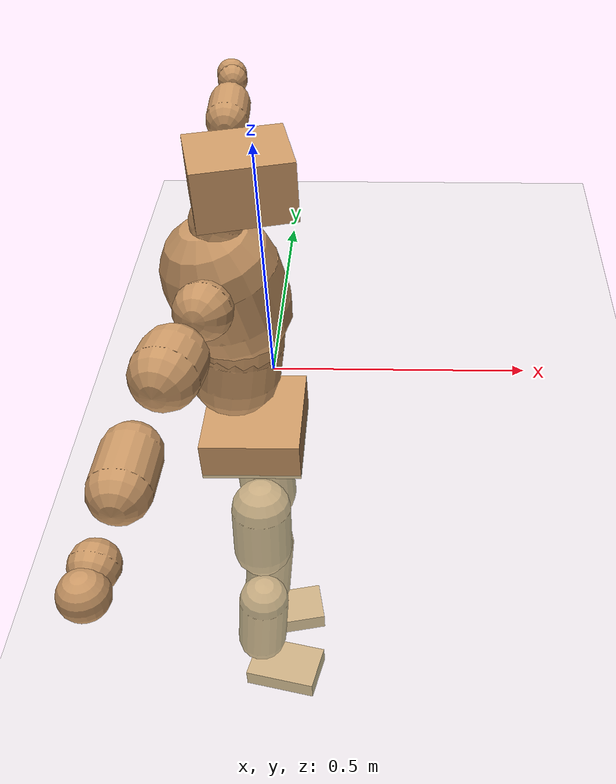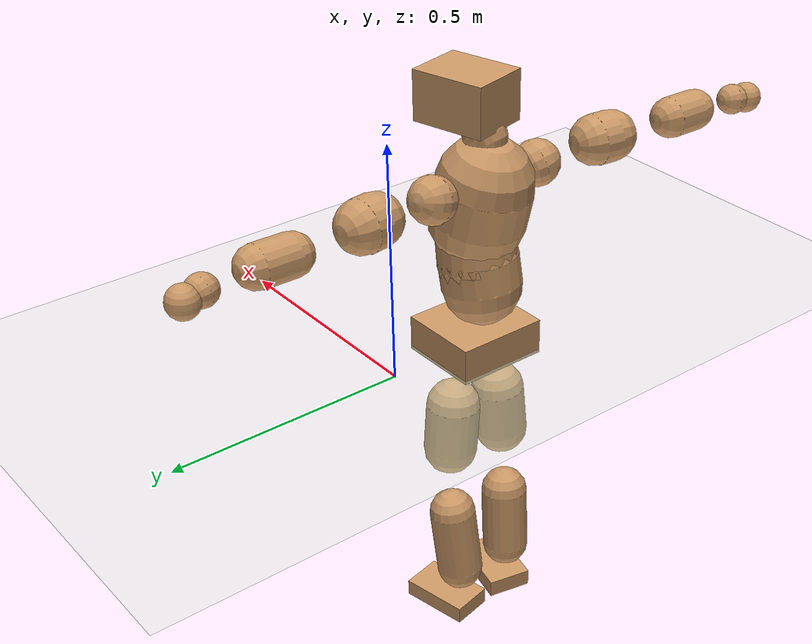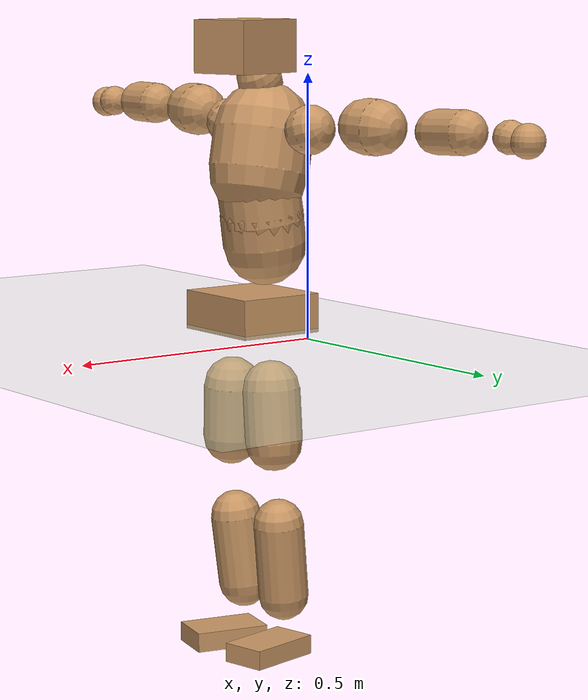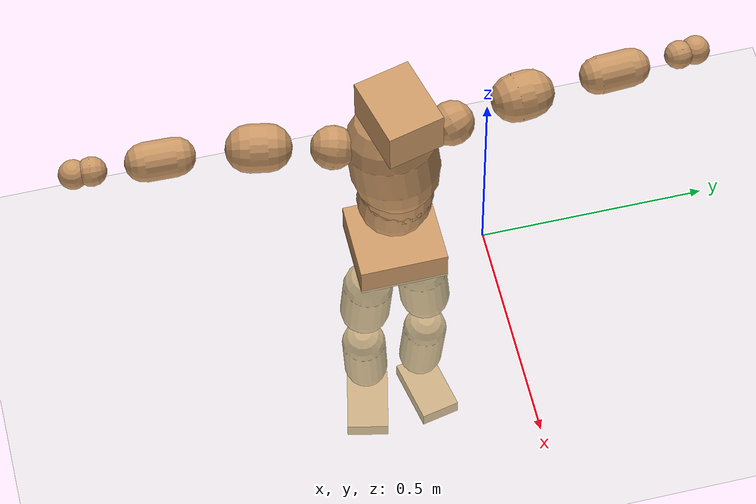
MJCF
<mujoco model="humanoid">
  <compiler coordinate="local" angle="radian"/>
  <default>
    <joint damping="0.0" armature="0.01" stiffness="0.0" limited="true"/>
    <geom conaffinity="1" condim="3" contype="7" margin="0.001" rgba="0.8 0.6 .4 1"/>
  </default>
  <asset>
    <texture type="skybox" builtin="gradient" rgb1=".4 .5 .6" rgb2="0 0 0" width="100" height="100"/>
    <texture builtin="flat" height="1278" mark="cross" markrgb="1 1 1" name="texgeom" random="0.01" rgb1="0.8 0.6 0.4" rgb2="0.8 0.6 0.4" type="cube" width="127"/>
    <texture builtin="checker" height="100" name="texplane" rgb1="0 0 0" rgb2="0.8 0.8 0.8" type="2d" width="100"/>
    <material name="MatPlane" reflectance="0.5" shininess="1" specular="1" texrepeat="60 60" texture="texplane"/>
    <material name="geom" texture="texgeom" texuniform="true"/>
  </asset>
  <worldbody>
    <light cutoff="100" diffuse="1 1 1" dir="-0 0 -1.3" directional="true" exponent="1" pos="0 0 1.3" specular=".1 .1 .1"/>
    <geom conaffinity="1" condim="3" name="floor" pos="0 0 0" rgba="0.8 0.9 0.8 1" size="100 100 .2" type="plane" material="MatPlane"/>
    <body name="Pelvis" pos="-0.0036 -0.1957 0.0359">
      <freejoint name="Pelvis"/>
      <geom type="box" contype="1" conaffinity="1" density="5359.375105" pos="-0.0083 -0.0000 -0.0069" size="0.0888 0.0973 0.0382" quat="1.0000 0.0000 0.0000 0.0025" name="Pelvis"/>
      <body name="L_Hip" pos="-0.01 0.053 -0.068">
        <joint name="L_Hip_x" type="hinge" pos="0 0 0" axis="1 0 0" stiffness="1600" damping="160" armature="0.02" range="-180.0000 180.0000"/>
        <joint name="L_Hip_y" type="hinge" pos="0 0 0" axis="0 1 0" stiffness="1600" damping="160" armature="0.02" range="-180.0000 180.0000"/>
        <joint name="L_Hip_z" type="hinge" pos="0 0 0" axis="0 0 1" stiffness="1600" damping="160" armature="0.02" range="-180.0000 180.0000"/>
        <geom type="capsule" contype="1" conaffinity="1" density="2040.816327" size="0.0563" fromto="0.0000 0.0069 -0.0861 0.0001 0.0154 -0.1911" name="L_Hip"/>
        <body name="L_Knee" pos="0.0001 0.0224 -0.2771">
          <joint name="L_Knee_x" type="hinge" pos="0 0 0" axis="1 0 0" stiffness="1600" damping="160" armature="0.02" range="-180.0000 180.0000"/>
          <joint name="L_Knee_y" type="hinge" pos="0 0 0" axis="0 1 0" stiffness="1600" damping="160" armature="0.02" range="-180.0000 180.0000"/>
          <joint name="L_Knee_z" type="hinge" pos="0 0 0" axis="0 0 1" stiffness="1600" damping="160" armature="0.02" range="-180.0000 180.0000"/>
          <geom type="capsule" contype="1" conaffinity="1" density="1234.567901" size="0.0499" fromto="-0.0090 -0.0037 -0.0793 -0.0258 -0.0106 -0.2268" name="L_Knee"/>
          <body name="L_Ankle" pos="-0.0348 -0.0143 -0.3061">
            <joint name="L_Ankle_x" type="hinge" pos="0 0 0" axis="1 0 0" stiffness="1600" damping="160" armature="0.02" range="-180.0000 180.0000"/>
            <joint name="L_Ankle_y" type="hinge" pos="0 0 0" axis="0 1 0" stiffness="1600" damping="160" armature="0.02" range="-180.0000 180.0000"/>
            <joint name="L_Ankle_z" type="hinge" pos="0 0 0" axis="0 0 1" stiffness="1600" damping="160" armature="0.02" range="-180.0000 180.0000"/>
            <geom type="box" contype="1" conaffinity="1" density="999.999907" pos="0.0508 0.0104 -0.0218" size="0.076 0.0449 0.019" quat="0.9949 0.0000 0.0000 0.1010" name="L_Ankle"/>
            <body name="L_Toe" pos="0.1017 0.0209 -0.0437">
              <joint name="L_Toe_x" type="hinge" pos="0 0 0" axis="1 0 0" stiffness="1000" damping="100" armature="0.02" range="-180.0000 180.0000"/>
              <joint name="L_Toe_y" type="hinge" pos="0 0 0" axis="0 1 0" stiffness="1000" damping="100" armature="0.02" range="-180.0000 180.0000"/>
              <joint name="L_Toe_z" type="hinge" pos="0 0 0" axis="0 0 1" stiffness="1000" damping="100" armature="0.02" range="-180.0000 180.0000"/>
              <geom type="box" contype="1" conaffinity="1" density="8104172.301193" pos="0.0000 0.0000 0.0222" size="0.001 0.0023 0.001" quat="0.9941 0.0000 0.0000 0.1083" name="L_Toe"/>
            </body>
          </body>
        </body>
      </body>
      <body name="R_Hip" pos="-0.0016 -0.0574 -0.0772">
        <joint name="R_Hip_x" type="hinge" pos="0 0 0" axis="1 0 0" stiffness="1600" damping="160" armature="0.02" range="-180.0000 180.0000"/>
        <joint name="R_Hip_y" type="hinge" pos="0 0 0" axis="0 1 0" stiffness="1600" damping="160" armature="0.02" range="-180.0000 180.0000"/>
        <joint name="R_Hip_z" type="hinge" pos="0 0 0" axis="0 0 1" stiffness="1600" damping="160" armature="0.02" range="-180.0000 180.0000"/>
        <geom type="capsule" contype="1" conaffinity="1" density="2040.816327" size="0.0564" fromto="-0.0029 -0.0065 -0.0861 -0.0065 -0.0144 -0.1909" name="R_Hip"/>
        <body name="R_Knee" pos="-0.0095 -0.0209 -0.2769">
          <joint name="R_Knee_x" type="hinge" pos="0 0 0" axis="1 0 0" stiffness="1600" damping="160" armature="0.02" range="-180.0000 180.0000"/>
          <joint name="R_Knee_y" type="hinge" pos="0 0 0" axis="0 1 0" stiffness="1600" damping="160" armature="0.02" range="-180.0000 180.0000"/>
          <joint name="R_Knee_z" type="hinge" pos="0 0 0" axis="0 0 1" stiffness="1600" damping="160" armature="0.02" range="-180.0000 180.0000"/>
          <geom type="capsule" contype="1" conaffinity="1" density="1234.567901" size="0.0505" fromto="-0.0084 0.0040 -0.0800 -0.0230 0.0110 -0.2185" name="R_Knee"/>
          <body name="R_Ankle" pos="-0.0315 0.015 -0.2984">
            <joint name="R_Ankle_x" type="hinge" pos="0 0 0" axis="1 0 0" stiffness="1600" damping="160" armature="0.02" range="-180.0000 180.0000"/>
            <joint name="R_Ankle_y" type="hinge" pos="0 0 0" axis="0 1 0" stiffness="1600" damping="160" armature="0.02" range="-180.0000 180.0000"/>
            <joint name="R_Ankle_z" type="hinge" pos="0 0 0" axis="0 0 1" stiffness="1600" damping="160" armature="0.02" range="-180.0000 180.0000"/>
            <geom type="box" contype="1" conaffinity="1" density="1000.000013" pos="0.0533 -0.0118 -0.0229" size="0.0747 0.0481 0.0193" quat="0.9941 0.0000 0.0000 -0.1086" name="R_Ankle"/>
            <body name="R_Toe" pos="0.1065 -0.0236 -0.0458">
              <joint name="R_Toe_x" type="hinge" pos="0 0 0" axis="1 0 0" stiffness="1000" damping="100" armature="0.02" range="-180.0000 180.0000"/>
              <joint name="R_Toe_y" type="hinge" pos="0 0 0" axis="0 1 0" stiffness="1000" damping="100" armature="0.02" range="-180.0000 180.0000"/>
              <joint name="R_Toe_z" type="hinge" pos="0 0 0" axis="0 0 1" stiffness="1000" damping="100" armature="0.02" range="-180.0000 180.0000"/>
              <geom type="box" contype="1" conaffinity="1" density="7718919.445141" pos="0.0000 0.0000 0.0245" size="0.0011 0.0024 0.001" quat="0.9952 0.0000 0.0000 -0.0979" name="R_Toe"/>
            </body>
          </body>
        </body>
      </body>
      <body name="Torso" pos="-0.0383 0.0041 0.1039">
        <joint name="Torso_x" type="hinge" pos="0 0 0" axis="1 0 0" stiffness="2000" damping="200" armature="0.02" range="-180.0000 180.0000"/>
        <joint name="Torso_y" type="hinge" pos="0 0 0" axis="0 1 0" stiffness="2000" damping="200" armature="0.02" range="-180.0000 180.0000"/>
        <joint name="Torso_z" type="hinge" pos="0 0 0" axis="0 0 1" stiffness="2000" damping="200" armature="0.02" range="-180.0000 180.0000"/>
        <geom type="capsule" contype="1" conaffinity="1" density="2040.816327" size="0.0823" fromto="0.0127 0.0030 0.0812 0.0034 0.0008 0.0216" name="Torso"/>
        <body name="Spine" pos="0.0161 0.0038 0.1028">
          <joint name="Spine_x" type="hinge" pos="0 0 0" axis="1 0 0" stiffness="2000" damping="200" armature="0.02" range="-180.0000 180.0000"/>
          <joint name="Spine_y" type="hinge" pos="0 0 0" axis="0 1 0" stiffness="2000" damping="200" armature="0.02" range="-180.0000 180.0000"/>
          <joint name="Spine_z" type="hinge" pos="0 0 0" axis="0 0 1" stiffness="2000" damping="200" armature="0.02" range="-180.0000 180.0000"/>
          <geom type="capsule" contype="1" conaffinity="1" density="2040.816327" size="0.0812" fromto="0.0114 -0.0022 0.0804 -0.0056 0.0011 -0.0398" name="Spine"/>
          <body name="Chest" pos="0.0057 -0.0011 0.0406">
            <joint name="Chest_x" type="hinge" pos="0 0 0" axis="1 0 0" stiffness="2000" damping="200" armature="0.02" range="-180.0000 180.0000"/>
            <joint name="Chest_y" type="hinge" pos="0 0 0" axis="0 1 0" stiffness="2000" damping="200" armature="0.02" range="-180.0000 180.0000"/>
            <joint name="Chest_z" type="hinge" pos="0 0 0" axis="0 0 1" stiffness="2000" damping="200" armature="0.02" range="-180.0000 180.0000"/>
            <geom type="capsule" contype="1" conaffinity="1" density="2040.816327" size="0.0979" fromto="-0.0203 -0.0072 0.0955 -0.0042 -0.0015 0.0196" name="Chest"/>
            <body name="Neck" pos="-0.0338 -0.015 0.1627">
              <joint name="Neck_x" type="hinge" pos="0 0 0" axis="1 0 0" stiffness="1000" damping="100" armature="0.02" range="-180.0000 180.0000"/>
              <joint name="Neck_y" type="hinge" pos="0 0 0" axis="0 1 0" stiffness="1000" damping="100" armature="0.02" range="-180.0000 180.0000"/>
              <joint name="Neck_z" type="hinge" pos="0 0 0" axis="0 0 1" stiffness="1000" damping="100" armature="0.02" range="-180.0000 180.0000"/>
              <geom type="capsule" contype="1" conaffinity="1" density="1000" size="0.0435" fromto="0.0226 0.0049 0.0368 0.0174 0.0038 0.0285" name="Neck"/>
              <body name="Head" pos="0.04 0.0087 0.0653">
                <joint name="Head_x" type="hinge" pos="0 0 0" axis="1 0 0" stiffness="1000" damping="100" armature="0.02" range="-180.0000 180.0000"/>
                <joint name="Head_y" type="hinge" pos="0 0 0" axis="0 1 0" stiffness="1000" damping="100" armature="0.02" range="-180.0000 180.0000"/>
                <joint name="Head_z" type="hinge" pos="0 0 0" axis="0 0 1" stiffness="1000" damping="100" armature="0.02" range="-180.0000 180.0000"/>
                <geom type="box" contype="1" conaffinity="1" density="2250.000095" pos="0.0210 0.0054 0.0337" size="0.0788 0.0621 0.0512" quat="0.9922 0.0000 0.0000 0.1245" name="Head"/>
              </body>
            </body>
            <body name="L_Thorax" pos="-0.0181 0.0656 0.0909">
              <joint name="L_Thorax_x" type="hinge" pos="0 0 0" axis="1 0 0" stiffness="1000" damping="100" armature="0.02" range="-180.0000 180.0000"/>
              <joint name="L_Thorax_y" type="hinge" pos="0 0 0" axis="0 1 0" stiffness="1000" damping="100" armature="0.02" range="-180.0000 180.0000"/>
              <joint name="L_Thorax_z" type="hinge" pos="0 0 0" axis="0 0 1" stiffness="1000" damping="100" armature="0.02" range="-180.0000 180.0000"/>
              <geom type="capsule" contype="1" conaffinity="1" density="1000" size="0.0481" fromto="-0.0130 0.0603 0.0148 -0.0134 0.0622 0.0153" name="L_Thorax"/>
              <body name="L_Shoulder" pos="-0.0263 0.1225 0.0301">
                <joint name="L_Shoulder_x" type="hinge" pos="0 0 0" axis="1 0 0" stiffness="1000" damping="100" armature="0.02" range="-720.0000 720.0000"/>
                <joint name="L_Shoulder_y" type="hinge" pos="0 0 0" axis="0 1 0" stiffness="1000" damping="100" armature="0.02" range="-720.0000 720.0000"/>
                <joint name="L_Shoulder_z" type="hinge" pos="0 0 0" axis="0 0 1" stiffness="1000" damping="100" armature="0.02" range="-720.0000 720.0000"/>
                <geom type="capsule" contype="1" conaffinity="1" density="1000" size="0.0528" fromto="-0.0089 0.0823 -0.0017 -0.0125 0.1149 -0.0023" name="L_Shoulder"/>
                <body name="L_Elbow" pos="-0.0214 0.1972 -0.004">
                  <joint name="L_Elbow_x" type="hinge" pos="0 0 0" axis="1 0 0" stiffness="1000" damping="100" armature="0.02" range="-720.0000 720.0000"/>
                  <joint name="L_Elbow_y" type="hinge" pos="0 0 0" axis="0 1 0" stiffness="1000" damping="100" armature="0.02" range="-720.0000 720.0000"/>
                  <joint name="L_Elbow_z" type="hinge" pos="0 0 0" axis="0 0 1" stiffness="1000" damping="100" armature="0.02" range="-720.0000 720.0000"/>
                  <geom type="capsule" contype="1" conaffinity="1" density="1000" size="0.0413" fromto="-0.0024 0.0713 0.0025 -0.0048 0.1431 0.0051" name="L_Elbow"/>
                  <body name="L_Wrist" pos="-0.0072 0.2143 0.0076">
                    <joint name="L_Wrist_x" type="hinge" pos="0 0 0" axis="1 0 0" stiffness="600" damping="60" armature="0.02" range="-180.0000 180.0000"/>
                    <joint name="L_Wrist_y" type="hinge" pos="0 0 0" axis="0 1 0" stiffness="600" damping="60" armature="0.02" range="-180.0000 180.0000"/>
                    <joint name="L_Wrist_z" type="hinge" pos="0 0 0" axis="0 0 1" stiffness="600" damping="60" armature="0.02" range="-180.0000 180.0000"/>
                    <geom type="capsule" contype="1" conaffinity="1" density="1000" size="0.0307" fromto="-0.0064 0.0371 -0.0046 -0.0067 0.0390 -0.0048" name="L_Wrist"/>
                    <body name="L_Hand" pos="-0.0132 0.0761 -0.0094">
                      <joint name="L_Hand_x" type="hinge" pos="0 0 0" axis="1 0 0" stiffness="600" damping="60" armature="0.02" range="-180.0000 180.0000"/>
                      <joint name="L_Hand_y" type="hinge" pos="0 0 0" axis="0 1 0" stiffness="600" damping="60" armature="0.02" range="-180.0000 180.0000"/>
                      <joint name="L_Hand_z" type="hinge" pos="0 0 0" axis="0 0 1" stiffness="600" damping="60" armature="0.02" range="-180.0000 180.0000"/>
                      <geom type="sphere" contype="1" conaffinity="1" density="1000" size="0.0315" pos="0.0000 0.0000 0.0000" name="L_Hand"/>
                    </body>
                  </body>
                </body>
              </body>
            </body>
            <body name="R_Thorax" pos="-0.0215 -0.0765 0.0917">
              <joint name="R_Thorax_x" type="hinge" pos="0 0 0" axis="1 0 0" stiffness="1000" damping="100" armature="0.02" range="-180.0000 180.0000"/>
              <joint name="R_Thorax_y" type="hinge" pos="0 0 0" axis="0 1 0" stiffness="1000" damping="100" armature="0.02" range="-180.0000 180.0000"/>
              <joint name="R_Thorax_z" type="hinge" pos="0 0 0" axis="0 0 1" stiffness="1000" damping="100" armature="0.02" range="-180.0000 180.0000"/>
              <geom type="capsule" contype="1" conaffinity="1" density="1000" size="0.0474" fromto="-0.0070 -0.0525 0.0149 -0.0073 -0.0544 0.0154" name="R_Thorax"/>
              <body name="R_Shoulder" pos="-0.0143 -0.1069 0.0303">
                <joint name="R_Shoulder_x" type="hinge" pos="0 0 0" axis="1 0 0" stiffness="1000" damping="100" armature="0.02" range="-720.0000 720.0000"/>
                <joint name="R_Shoulder_y" type="hinge" pos="0 0 0" axis="0 1 0" stiffness="1000" damping="100" armature="0.02" range="-720.0000 720.0000"/>
                <joint name="R_Shoulder_z" type="hinge" pos="0 0 0" axis="0 0 1" stiffness="1000" damping="100" armature="0.02" range="-720.0000 720.0000"/>
                <geom type="capsule" contype="1" conaffinity="1" density="1000" size="0.0519" fromto="-0.0128 -0.0809 0.0022 -0.0188 -0.1190 0.0033" name="R_Shoulder"/>
                <body name="R_Elbow" pos="-0.0315 -0.1999 0.0055">
                  <joint name="R_Elbow_x" type="hinge" pos="0 0 0" axis="1 0 0" stiffness="1000" damping="100" armature="0.02" range="-720.0000 720.0000"/>
                  <joint name="R_Elbow_y" type="hinge" pos="0 0 0" axis="0 1 0" stiffness="1000" damping="100" armature="0.02" range="-720.0000 720.0000"/>
                  <joint name="R_Elbow_z" type="hinge" pos="0 0 0" axis="0 0 1" stiffness="1000" damping="100" armature="0.02" range="-720.0000 720.0000"/>
                  <geom type="capsule" contype="1" conaffinity="1" density="1000" size="0.0421" fromto="-0.0017 -0.0721 0.0002 -0.0033 -0.1388 0.0004" name="R_Elbow"/>
                  <body name="R_Wrist" pos="-0.005 -0.2109 0.0007">
                    <joint name="R_Wrist_x" type="hinge" pos="0 0 0" axis="1 0 0" stiffness="600" damping="60" armature="0.02" range="-180.0000 180.0000"/>
                    <joint name="R_Wrist_y" type="hinge" pos="0 0 0" axis="0 1 0" stiffness="600" damping="60" armature="0.02" range="-180.0000 180.0000"/>
                    <joint name="R_Wrist_z" type="hinge" pos="0 0 0" axis="0 0 1" stiffness="600" damping="60" armature="0.02" range="-180.0000 180.0000"/>
                    <geom type="capsule" contype="1" conaffinity="1" density="1000" size="0.0315" fromto="-0.0041 -0.0375 -0.0039 -0.0043 -0.0395 -0.0041" name="R_Wrist"/>
                    <body name="R_Hand" pos="-0.0083 -0.077 -0.008">
                      <joint name="R_Hand_x" type="hinge" pos="0 0 0" axis="1 0 0" stiffness="600" damping="60" armature="0.02" range="-180.0000 180.0000"/>
                      <joint name="R_Hand_y" type="hinge" pos="0 0 0" axis="0 1 0" stiffness="600" damping="60" armature="0.02" range="-180.0000 180.0000"/>
                      <joint name="R_Hand_z" type="hinge" pos="0 0 0" axis="0 0 1" stiffness="600" damping="60" armature="0.02" range="-180.0000 180.0000"/>
                      <geom type="sphere" contype="1" conaffinity="1" density="1000" size="0.0317" pos="0.0000 0.0000 0.0000" name="R_Hand"/>
                    </body>
                  </body>
                </body>
              </body>
            </body>
          </body>
        </body>
      </body>
    </body>
  </worldbody>
  <actuator>
    <motor name="L_Hip_x" joint="L_Hip_x" gear="500"/>
    <motor name="L_Hip_y" joint="L_Hip_y" gear="500"/>
    <motor name="L_Hip_z" joint="L_Hip_z" gear="500"/>
    <motor name="L_Knee_x" joint="L_Knee_x" gear="500"/>
    <motor name="L_Knee_y" joint="L_Knee_y" gear="500"/>
    <motor name="L_Knee_z" joint="L_Knee_z" gear="500"/>
    <motor name="L_Ankle_x" joint="L_Ankle_x" gear="500"/>
    <motor name="L_Ankle_y" joint="L_Ankle_y" gear="500"/>
    <motor name="L_Ankle_z" joint="L_Ankle_z" gear="500"/>
    <motor name="L_Toe_x" joint="L_Toe_x" gear="500"/>
    <motor name="L_Toe_y" joint="L_Toe_y" gear="500"/>
    <motor name="L_Toe_z" joint="L_Toe_z" gear="500"/>
    <motor name="R_Hip_x" joint="R_Hip_x" gear="500"/>
    <motor name="R_Hip_y" joint="R_Hip_y" gear="500"/>
    <motor name="R_Hip_z" joint="R_Hip_z" gear="500"/>
    <motor name="R_Knee_x" joint="R_Knee_x" gear="500"/>
    <motor name="R_Knee_y" joint="R_Knee_y" gear="500"/>
    <motor name="R_Knee_z" joint="R_Knee_z" gear="500"/>
    <motor name="R_Ankle_x" joint="R_Ankle_x" gear="500"/>
    <motor name="R_Ankle_y" joint="R_Ankle_y" gear="500"/>
    <motor name="R_Ankle_z" joint="R_Ankle_z" gear="500"/>
    <motor name="R_Toe_x" joint="R_Toe_x" gear="500"/>
    <motor name="R_Toe_y" joint="R_Toe_y" gear="500"/>
    <motor name="R_Toe_z" joint="R_Toe_z" gear="500"/>
    <motor name="Torso_x" joint="Torso_x" gear="500"/>
    <motor name="Torso_y" joint="Torso_y" gear="500"/>
    <motor name="Torso_z" joint="Torso_z" gear="500"/>
    <motor name="Spine_x" joint="Spine_x" gear="500"/>
    <motor name="Spine_y" joint="Spine_y" gear="500"/>
    <motor name="Spine_z" joint="Spine_z" gear="500"/>
    <motor name="Chest_x" joint="Chest_x" gear="500"/>
    <motor name="Chest_y" joint="Chest_y" gear="500"/>
    <motor name="Chest_z" joint="Chest_z" gear="500"/>
    <motor name="Neck_x" joint="Neck_x" gear="500"/>
    <motor name="Neck_y" joint="Neck_y" gear="500"/>
    <motor name="Neck_z" joint="Neck_z" gear="500"/>
    <motor name="Head_x" joint="Head_x" gear="500"/>
    <motor name="Head_y" joint="Head_y" gear="500"/>
    <motor name="Head_z" joint="Head_z" gear="500"/>
    <motor name="L_Thorax_x" joint="L_Thorax_x" gear="500"/>
    <motor name="L_Thorax_y" joint="L_Thorax_y" gear="500"/>
    <motor name="L_Thorax_z" joint="L_Thorax_z" gear="500"/>
    <motor name="L_Shoulder_x" joint="L_Shoulder_x" gear="500"/>
    <motor name="L_Shoulder_y" joint="L_Shoulder_y" gear="500"/>
    <motor name="L_Shoulder_z" joint="L_Shoulder_z" gear="500"/>
    <motor name="L_Elbow_x" joint="L_Elbow_x" gear="500"/>
    <motor name="L_Elbow_y" joint="L_Elbow_y" gear="500"/>
    <motor name="L_Elbow_z" joint="L_Elbow_z" gear="500"/>
    <motor name="L_Wrist_x" joint="L_Wrist_x" gear="500"/>
    <motor name="L_Wrist_y" joint="L_Wrist_y" gear="500"/>
    <motor name="L_Wrist_z" joint="L_Wrist_z" gear="500"/>
    <motor name="L_Hand_x" joint="L_Hand_x" gear="500"/>
    <motor name="L_Hand_y" joint="L_Hand_y" gear="500"/>
    <motor name="L_Hand_z" joint="L_Hand_z" gear="500"/>
    <motor name="R_Thorax_x" joint="R_Thorax_x" gear="500"/>
    <motor name="R_Thorax_y" joint="R_Thorax_y" gear="500"/>
    <motor name="R_Thorax_z" joint="R_Thorax_z" gear="500"/>
    <motor name="R_Shoulder_x" joint="R_Shoulder_x" gear="500"/>
    <motor name="R_Shoulder_y" joint="R_Shoulder_y" gear="500"/>
    <motor name="R_Shoulder_z" joint="R_Shoulder_z" gear="500"/>
    <motor name="R_Elbow_x" joint="R_Elbow_x" gear="500"/>
    <motor name="R_Elbow_y" joint="R_Elbow_y" gear="500"/>
    <motor name="R_Elbow_z" joint="R_Elbow_z" gear="500"/>
    <motor name="R_Wrist_x" joint="R_Wrist_x" gear="500"/>
    <motor name="R_Wrist_y" joint="R_Wrist_y" gear="500"/>
    <motor name="R_Wrist_z" joint="R_Wrist_z" gear="500"/>
    <motor name="R_Hand_x" joint="R_Hand_x" gear="500"/>
    <motor name="R_Hand_y" joint="R_Hand_y" gear="500"/>
    <motor name="R_Hand_z" joint="R_Hand_z" gear="500"/>
  </actuator>
  <contact>
    <exclude body1="Torso" body2="Chest"/>
    <exclude body1="Head" body2="Chest"/>
    <exclude body1="R_Knee" body2="R_Toe"/>
    <exclude body1="R_Knee" body2="L_Ankle"/>
    <exclude body1="R_Knee" body2="L_Toe"/>
    <exclude body1="L_Knee" body2="L_Toe"/>
    <exclude body1="L_Knee" body2="R_Ankle"/>
    <exclude body1="L_Knee" body2="R_Toe"/>
    <exclude body1="L_Shoulder" body2="Chest"/>
    <exclude body1="R_Shoulder" body2="Chest"/>
  </contact>
  <sensor/>
  <size njmax="700" nconmax="700"/>
</mujoco>
